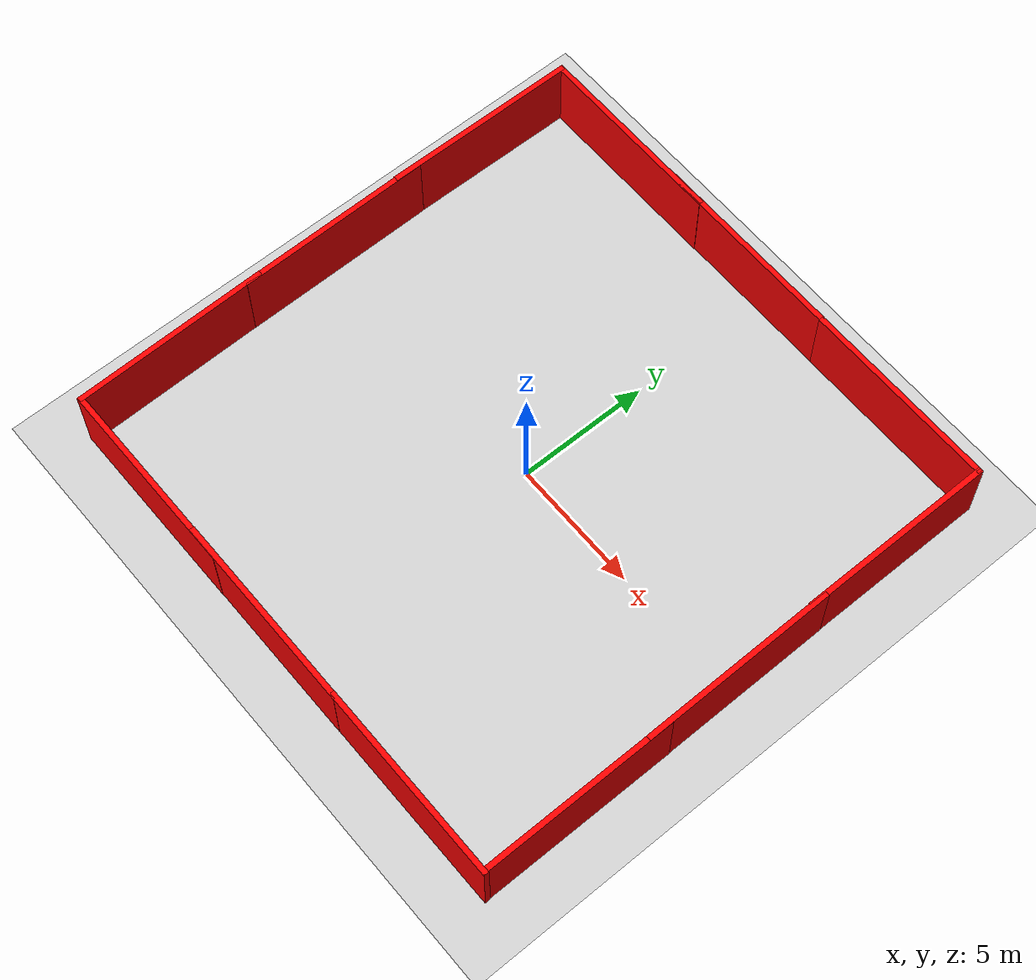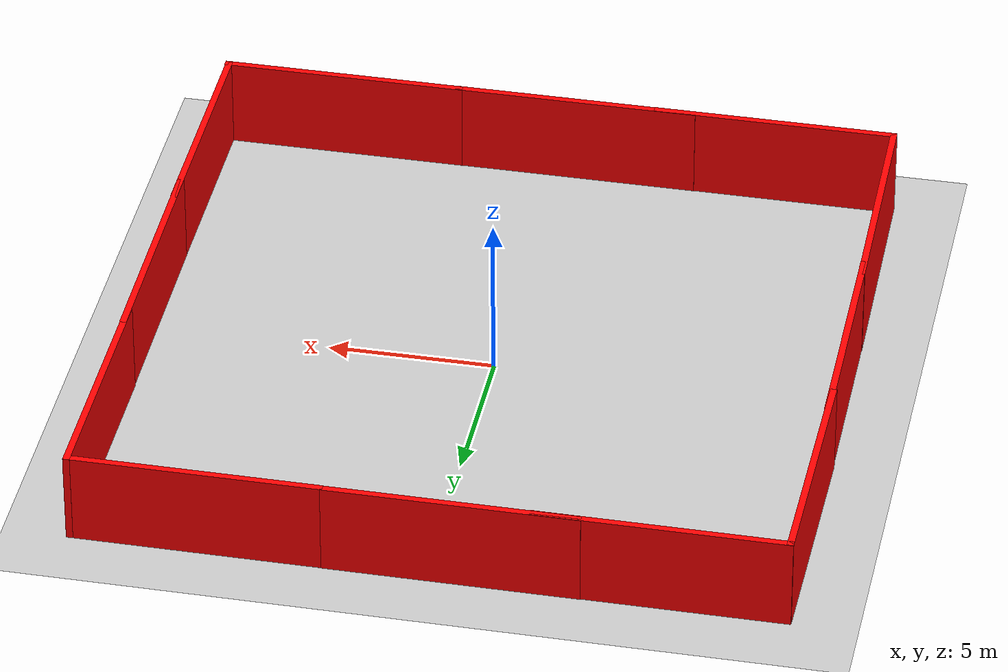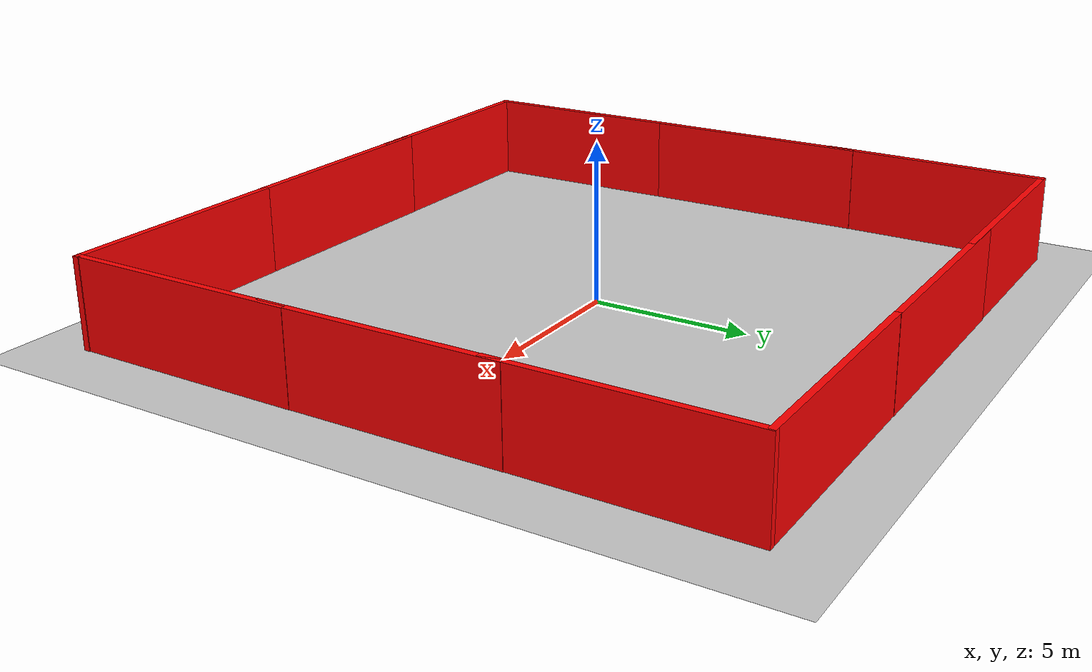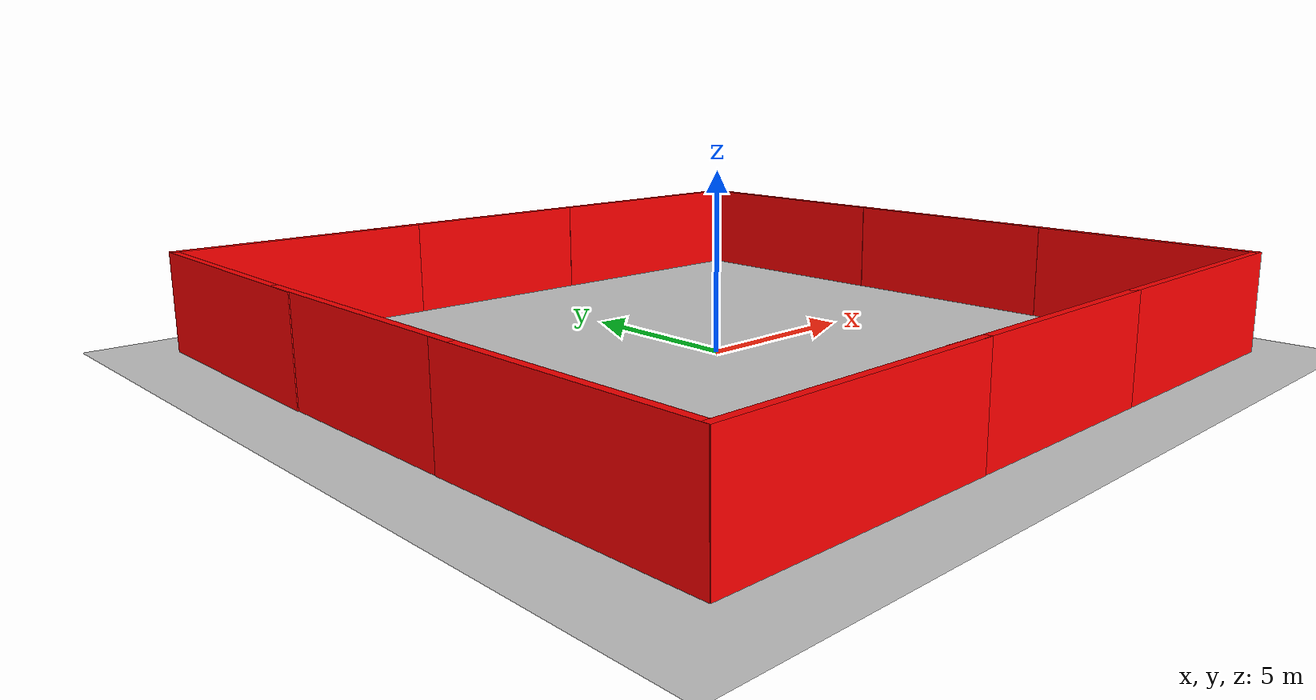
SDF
<sdf version="1.4">
 <world name="default">
  <light name="sun" type="directional">
   <pose>0 0 10 0 -0 0</pose>
   <diffuse>0.8 0.8 0.8 1</diffuse>
   <specular>0.2 0.2 0.2 1</specular>
   <attenuation>
    <range>1000</range>
    <constant>0.9</constant>
    <linear>0.01</linear>
    <quadratic>0.001</quadratic>
   </attenuation>
   <direction>-0.5 0.1 -0.9</direction>
  </light>
  <model name="ground_plane">
   <static>1</static>
   <link name="link">
    <collision name="collision">
     <geometry><plane><normal>0 0 1</normal><size>100 100</size></plane></geometry>
     <surface><friction><ode><mu>100</mu><mu2>50</mu2></ode></friction></surface>
    </collision>
    <visual name="visual">
     <cast_shadows>0</cast_shadows>
     <geometry><plane><normal>0 0 1</normal><size>100 100</size></plane></geometry>
     <material>
      <script><uri>file://media/materials/scripts/gazebo.material</uri><name>Gazebo/Grey</name></script>
     </material>
    </visual>
    <velocity_decay><linear>0</linear><angular>0</angular></velocity_decay>
   </link>
  </model>
  <physics type="ode">
   <max_step_size>0.001</max_step_size>
   <real_time_factor>1</real_time_factor>
   <real_time_update_rate>1000</real_time_update_rate>
   <gravity>0 0 -9.8</gravity>
  </physics>
  <scene><ambient>0.4 0.4 0.4 1</ambient><background>0.7 0.7 0.7 1</background><shadows>1</shadows></scene>
  <model name="grey_wall">
   <static>1</static>
   <link name="link">
    <pose>0 0 1.4 0 -0 0</pose>
    <collision name="collision"><geometry><box><size>7.5 0.2 2.8</size></box></geometry></collision>
    <visual name="visual">
     <cast_shadows>0</cast_shadows>
     <geometry><box><size>7.5 0.2 2.8</size></box></geometry>
     <material>
      <ambient>1 0 0 1</ambient>
      <diffuse>1 0 0 1</diffuse>
      <specular>1 0 0 1</specular>
      <emissive>1 0 0 1</emissive>
     </material>
    </visual>
    <velocity_decay><linear>0</linear><angular>0</angular></velocity_decay>
   </link>
   <pose>-6.83637 10.3722 0 0 -0 0</pose>
  </model>
  <model name="grey_wall_0">
   <static>1</static>
   <link name="link">
    <pose>0 0 1.4 0 -0 0</pose>
    <collision name="collision"><geometry><box><size>7.5 0.2 2.8</size></box></geometry></collision>
    <visual name="visual">
     <cast_shadows>0</cast_shadows>
     <geometry><box><size>7.5 0.2 2.8</size></box></geometry>
     <material>
      <ambient>1 0 0 1</ambient>
      <diffuse>1 0 0 1</diffuse>
      <specular>1 0 0 1</specular>
      <emissive>1 0 0 1</emissive>
     </material>
    </visual>
    <velocity_decay><linear>0</linear><angular>0</angular></velocity_decay>
   </link>
   <pose>-0.796756 10.3889 0 0 -0 0</pose>
  </model>
  <model name="grey_wall_1">
   <static>1</static>
   <link name="link">
    <pose>0 0 1.4 0 -0 0</pose>
    <collision name="collision"><geometry><box><size>7.5 0.2 2.8</size></box></geometry></collision>
    <visual name="visual">
     <cast_shadows>0</cast_shadows>
     <geometry><box><size>7.5 0.2 2.8</size></box></geometry>
     <material>
      <ambient>1 0 0 1</ambient>
      <diffuse>1 0 0 1</diffuse>
      <specular>1 0 0 1</specular>
      <emissive>1 0 0 1</emissive>
     </material>
    </visual>
    <velocity_decay><linear>0</linear><angular>0</angular></velocity_decay>
   </link>
   <pose>6.63489 10.3804 0 0 -0 0</pose>
  </model>
  <model name="grey_wall_2">
   <static>1</static>
   <link name="link">
    <pose>0 0 1.4 0 -0 0</pose>
    <collision name="collision"><geometry><box><size>7.5 0.2 2.8</size></box></geometry></collision>
    <visual name="visual">
     <cast_shadows>0</cast_shadows>
     <geometry><box><size>7.5 0.2 2.8</size></box></geometry>
     <material>
      <ambient>1 0 0 1</ambient>
      <diffuse>1 0 0 1</diffuse>
      <specular>1 0 0 1</specular>
      <emissive>1 0 0 1</emissive>
     </material>
    </visual>
    <velocity_decay><linear>0</linear><angular>0</angular></velocity_decay>
   </link>
   <pose>-6.73975 -10.3266 0 0 -0 0</pose>
  </model>
  <model name="grey_wall_3">
   <static>1</static>
   <link name="link">
    <pose>0 0 1.4 0 -0 0</pose>
    <collision name="collision"><geometry><box><size>7.5 0.2 2.8</size></box></geometry></collision>
    <visual name="visual">
     <cast_shadows>0</cast_shadows>
     <geometry><box><size>7.5 0.2 2.8</size></box></geometry>
     <material>
      <ambient>1 0 0 1</ambient>
      <diffuse>1 0 0 1</diffuse>
      <specular>1 0 0 1</specular>
      <emissive>1 0 0 1</emissive>
     </material>
    </visual>
    <velocity_decay><linear>0</linear><angular>0</angular></velocity_decay>
   </link>
   <pose>-0.524266 -10.3159 0 0 -0 0</pose>
  </model>
  <model name="grey_wall_4">
   <static>1</static>
   <link name="link">
    <pose>0 0 1.4 0 -0 0</pose>
    <collision name="collision"><geometry><box><size>7.5 0.2 2.8</size></box></geometry></collision>
    <visual name="visual">
     <cast_shadows>0</cast_shadows>
     <geometry><box><size>7.5 0.2 2.8</size></box></geometry>
     <material>
      <ambient>1 0 0 1</ambient>
      <diffuse>1 0 0 1</diffuse>
      <specular>1 0 0 1</specular>
      <emissive>1 0 0 1</emissive>
     </material>
    </visual>
    <velocity_decay><linear>0</linear><angular>0</angular></velocity_decay>
   </link>
   <pose>6.74842 -10.308 0 0 -0 0</pose>
  </model>
  <model name="grey_wall_5">
   <static>1</static>
   <link name="link">
    <pose>0 0 1.4 0 -0 0</pose>
    <collision name="collision"><geometry><box><size>7.5 0.2 2.8</size></box></geometry></collision>
    <visual name="visual">
     <cast_shadows>0</cast_shadows>
     <geometry><box><size>7.5 0.2 2.8</size></box></geometry>
     <material>
      <ambient>1 0 0 1</ambient>
      <diffuse>1 0 0 1</diffuse>
      <specular>1 0 0 1</specular>
      <emissive>1 0 0 1</emissive>
     </material>
    </visual>
    <velocity_decay><linear>0</linear><angular>0</angular></velocity_decay>
   </link>
   <pose>10.3745 -6.63645 0 0 0 -1.57076</pose>
  </model>
  <model name="grey_wall_6">
   <static>1</static>
   <link name="link">
    <pose>0 0 1.4 0 -0 0</pose>
    <collision name="collision"><geometry><box><size>7.5 0.2 2.8</size></box></geometry></collision>
    <visual name="visual">
     <cast_shadows>0</cast_shadows>
     <geometry><box><size>7.5 0.2 2.8</size></box></geometry>
     <material>
      <ambient>1 0 0 1</ambient>
      <diffuse>1 0 0 1</diffuse>
      <specular>1 0 0 1</specular>
      <emissive>1 0 0 1</emissive>
     </material>
    </visual>
    <velocity_decay><linear>0</linear><angular>0</angular></velocity_decay>
   </link>
   <pose>10.3489 -0.077823 0 0 -0 1.57597</pose>
  </model>
  <model name="grey_wall_8">
   <static>1</static>
   <link name="link">
    <pose>0 0 1.4 0 -0 0</pose>
    <collision name="collision"><geometry><box><size>7.5 0.2 2.8</size></box></geometry></collision>
    <visual name="visual">
     <cast_shadows>0</cast_shadows>
     <geometry><box><size>7.5 0.2 2.8</size></box></geometry>
     <material>
      <ambient>1 0 0 1</ambient>
      <diffuse>1 0 0 1</diffuse>
      <specular>1 0 0 1</specular>
      <emissive>1 0 0 1</emissive>
     </material>
    </visual>
    <velocity_decay><linear>0</linear><angular>0</angular></velocity_decay>
   </link>
   <pose>-10.5347 6.70249 0 0 -0 1.56</pose>
  </model>
  <model name="grey_wall_9">
   <static>1</static>
   <link name="link">
    <pose>0 0 1.4 0 -0 0</pose>
    <collision name="collision"><geometry><box><size>7.5 0.2 2.8</size></box></geometry></collision>
    <visual name="visual">
     <cast_shadows>0</cast_shadows>
     <geometry><box><size>7.5 0.2 2.8</size></box></geometry>
     <material>
      <ambient>1 0 0 1</ambient>
      <diffuse>1 0 0 1</diffuse>
      <specular>1 0 0 1</specular>
      <emissive>1 0 0 1</emissive>
     </material>
    </visual>
    <velocity_decay><linear>0</linear><angular>0</angular></velocity_decay>
   </link>
   <pose>-10.5254 0.203964 0 0 0 -1.56319</pose>
  </model>
  <spherical_coordinates>
   <surface_model>EARTH_WGS84</surface_model>
   <latitude_deg>0</latitude_deg>
   <longitude_deg>0</longitude_deg>
   <elevation>0</elevation>
   <heading_deg>0</heading_deg>
  </spherical_coordinates>
  <model name="grey_wall_11">
   <static>1</static>
   <link name="link">
    <pose>0 0 1.4 0 -0 0</pose>
    <collision name="collision"><geometry><box><size>7.5 0.2 2.8</size></box></geometry></collision>
    <visual name="visual">
     <cast_shadows>0</cast_shadows>
     <geometry><box><size>7.5 0.2 2.8</size></box></geometry>
     <material>
      <ambient>1 0 0 1</ambient>
      <diffuse>1 0 0 1</diffuse>
      <specular>1 0 0 1</specular>
      <emissive>1 0 0 1</emissive>
     </material>
    </visual>
    <velocity_decay><linear>0</linear><angular>0</angular></velocity_decay>
   </link>
   <pose>-10.4526 -6.65634 0 0 0 -1.5551</pose>
  </model>
  <model name="grey_wall_13">
   <static>1</static>
   <link name="link">
    <pose>0 0 1.4 0 -0 0</pose>
    <collision name="collision"><geometry><box><size>7.5 0.2 2.8</size></box></geometry></collision>
    <visual name="visual">
     <cast_shadows>0</cast_shadows>
     <geometry><box><size>7.5 0.2 2.8</size></box></geometry>
     <material>
      <ambient>1 0 0 1</ambient>
      <diffuse>1 0 0 1</diffuse>
      <specular>1 0 0 1</specular>
      <emissive>1 0 0 1</emissive>
     </material>
    </visual>
    <velocity_decay><linear>0</linear><angular>0</angular></velocity_decay>
   </link>
   <pose>10.32 6.73319 0 0 -0 1.56962</pose>
  </model>
 </world>
</sdf>
